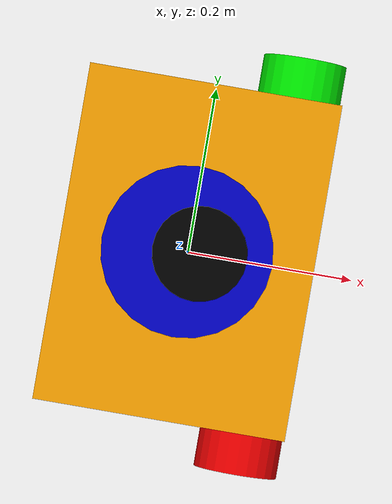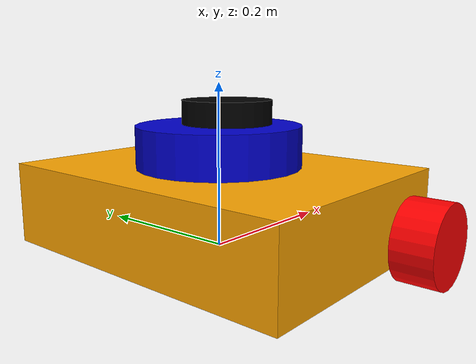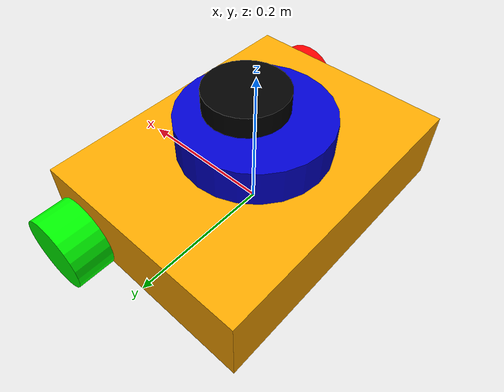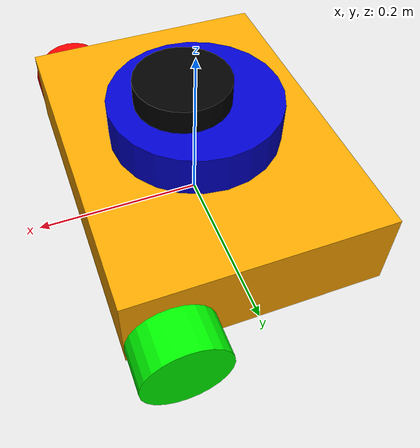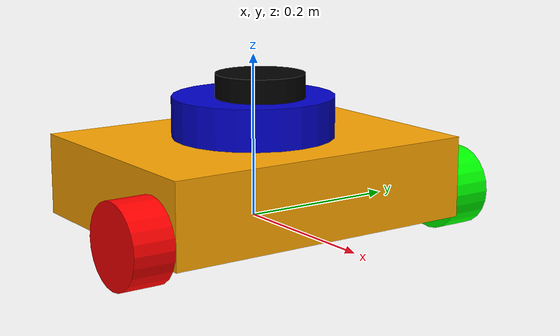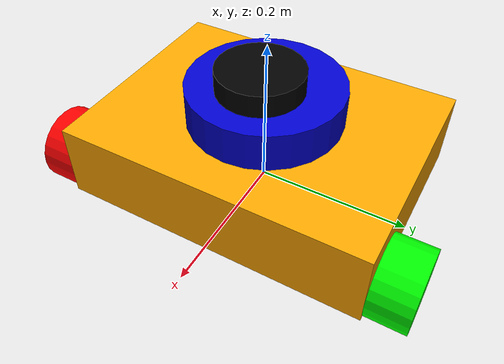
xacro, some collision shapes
<?xml version="1.0" ?>
<robot name="myrobot"  xmlns:xacro="http://www.ros.org/wiki/xacro">

  <!-- Constants for robot dimensions -->
  <xacro:property name="PI" value="3.1415926535897931"/>
  <xacro:property name="base_link_l" value="0.4" />
  <xacro:property name="base_link_w" value="0.3" />
  <xacro:property name="base_link_h" value="0.1" />
  <xacro:property name="base_link_mass" value="2" />

  <xacro:property name="wheel_length" value="0.05" />
  <xacro:property name="wheel_radius" value="0.05" />
  <xacro:property name="wheel_mass" value="0.2" />

  <xacro:property name="caster_radius" value="0.025" />
  <xacro:property name="caster_mass" value="0.05" />

  <xacro:property name="laser_scanner_base_link_height" value="0.05" />
  <xacro:property name="laser_scanner_base_link_radius" value="0.1" />
  <xacro:property name="laser_scanner_base_link_mass"   value="0.5" />

  <!-- color definition-->
  <material name="blue">
    <color rgba="0 0 0.8 1"/>
  </material>
  <material name="black">
    <color rgba="0 0 0 1"/>
  </material>
  <material name="white">
    <color rgba="1 1 1 1"/>
  </material>
  <material name="orange">
    <color rgba="1 0.65 0 1"/>
  </material>
  <material name="red">
    <color rgba="1 0 0 1"/>
  </material>
  <material name="green">
    <color rgba="0 1 0 1"/>
  </material>
  <material name="gray">
    <color rgba="0.5 0.5 0.5 1"/>
  </material>

  <!-- Macros -->
  <xacro:macro name="cube_inertial" params="mass">
         <inertial>
                  <mass value="${mass}" />
                  <inertia ixx="0.01" ixy="0.0"   ixz="0.0"
                                      iyy="0.02"  iyz="0.0"
                                                  izz="0.041" />
         </inertial>
  </xacro:macro>

  <xacro:macro name="cylinder_inertial" params="mass">
    <inertial>
      <mass value="${mass}"/>
      <inertia ixx="0.0001" ixy="0.0"     ixz="0.0"
                            iyy="0.0001"  iyz="0.0"
                                          izz="0.0001"/>
    </inertial>
  </xacro:macro>

  <xacro:macro name="sphere_inertial" params="mass">
    <inertial>
      <mass value="${mass}"/>
      <inertia ixx="1.2e-05" ixy="0.0"     ixz="0.0"
                            iyy="1.2e-05"  iyz="0.0"
                                           izz="1.2e-05"/>
    </inertial>
  </xacro:macro>

<!--footprint dummy link -->
  <link name="base_footprint"/>

  <joint name="base_joint" type="fixed">
    <parent link="base_footprint"/>
    <child link="base_link" />
    <origin xyz="0 0 0.05" rpy="0 0 0"/>
  </joint>

<!--base link -->
  <link name="base_link">
    <visual>
      <geometry>
        <box size="${base_link_w} ${base_link_l} ${base_link_h}"/>
      </geometry>
      <material name="orange"/>
    </visual>

    <collision>
      <geometry>
        <box size="${base_link_w} ${base_link_l} ${base_link_h}"/>
      </geometry>
    </collision>

    <xacro:cube_inertial mass="${base_link_mass}"/>
  </link>

  <gazebo reference="base_link">
    <material>Gazebo/Orange</material>
  </gazebo>

  <!--right wheel -->
  <link name="right_wheel">
    <visual>
      <geometry>
        <cylinder length="${wheel_length}" radius="${wheel_radius}"/>
      </geometry>
      <material name="red"/>
      <origin rpy="1.57075 0 0" xyz="0 -0.025 0"/>
      <material name="red"/>
    </visual>

    <collision>
      <geometry>
        <cylinder length="${wheel_length}" radius="${wheel_radius}"/>
      </geometry>
      <origin rpy="1.57075 0 0" xyz="0 -0.025 0"/>
    </collision>

    <xacro:cylinder_inertial mass="${wheel_mass}"/>
  </link>

  <gazebo reference="right_wheel">
    <material>Gazebo/Red</material>
  </gazebo>

  <joint name="wheel_right_joint" type="continuous">
    <parent link="base_link"/>
    <child link="right_wheel"/>
    <origin xyz="0.1 -0.2 -0.025"/>
    <axis xyz="0 1 0"/>
  </joint>
  <!--left wheel -->
  <link name="left_wheel">
    <visual>
      <geometry>
        <cylinder length="${wheel_length}" radius="${wheel_radius}"/>
      </geometry>
      <material name="green"/>
      <origin rpy="1.57075 0 0" xyz="0 0.025 0"/>
    </visual>

    <collision>
      <geometry>
        <cylinder length="${wheel_length}" radius="${wheel_radius}"/>
      </geometry>
      <origin rpy="1.57075 0 0" xyz="0 0.025 0"/>
    </collision>

    <xacro:cylinder_inertial mass="${wheel_mass}"/>
  </link>

  <gazebo reference="left_wheel">
    <material>Gazebo/Green</material>
  </gazebo>

  <joint name="wheel_left_joint" type="continuous">
    <parent link="base_link"/>
    <child link="left_wheel"/>
    <origin xyz="0.1 0.2 -0.025"/>
    <axis xyz="0 1 0"/>
  </joint>
  <!--right caster-->
  <link name="right_caster">
    <visual>
      <geometry>
        <sphere radius="${caster_radius}"/>
      </geometry>
      <origin xyz="0 0 0"/>
      <material name="gray"/>
    </visual>

    <collision>
      <geometry>
        <sphere radius="${caster_radius}"/>
      </geometry>
      <origin xyz="0 0 0"/>
    </collision>

    <xacro:sphere_inertial mass="${caster_mass}"/>
  </link>

  <gazebo reference="right_caster">
    <material>Gazebo/Gray</material>
  </gazebo>

  <joint name="base_to_right_caster" type="fixed">
    <parent link="base_link"/>
    <child link="right_caster"/>
    <origin xyz="-${base_link_w*0.33} ${base_link_l*0.25} -${base_link_h*0.5}"/>
  </joint>
  <!--left caster-->
  <link name="left_caster">
    <visual>
      <geometry>
        <sphere radius="${caster_radius}"/>
      </geometry>
      <origin xyz="0 0 0"/>
      <material name="gray"/>
    </visual>

    <collision>
      <geometry>
        <sphere radius="${caster_radius}"/>
      </geometry>
      <origin xyz="0 0 0"/>
    </collision>

    <xacro:sphere_inertial mass="${caster_mass}"/>
  </link>

  <gazebo reference="left_caster">
    <material>Gazebo/Gray</material>
  </gazebo>

  <joint name="base_to_left_caster" type="fixed">
    <parent link="base_link"/>
    <child link="left_caster"/>
    <origin xyz="-${base_link_w*0.33} -${base_link_l*0.25} -${base_link_h*0.5}"/>
  </joint>
<!-- imu -->
  <joint name="imu_joint" type="fixed">
    <parent link="base_link"/>
    <child link="imu_link"/>
    <origin xyz="0.0 0 0" rpy="0 0 0"/>
  </joint>

  <link name="imu_link"/>
<!-- laser scanner base link -->
  <link name="laser_scanner_base_link">
    <visual>
      <geometry>
        <cylinder length="${laser_scanner_base_link_height}" radius="${laser_scanner_base_link_radius}"/>
      </geometry>
      <origin xyz="0 0 ${laser_scanner_base_link_height*0.5}"/>
      <material name="blue"/>
    </visual>

    <collision>
      <geometry>
        <cylinder length="${laser_scanner_base_link_height}" radius="${laser_scanner_base_link_radius}"/>
      </geometry>
      <origin xyz="0 0 ${laser_scanner_base_link_height*0.5}"/>
    </collision>

    <xacro:cylinder_inertial mass="${laser_scanner_base_link_mass}"/>
  </link>

  <joint name="base_link_to_laser_scanner_base_link" type="fixed">
    <parent link="base_link"/>
    <child link="laser_scanner_base_link" />
    <origin xyz="0 0 ${base_link_h*0.5}"/>
  </joint>

  <gazebo reference="laser_scanner_base_link">
    <material>Gazebo/Blue</material>
  </gazebo>
  <!-- laser scanner -->
  <link name="base_scan">
    <visual>
      <origin xyz="0 0 0" rpy="0 0 0"/>
      <geometry>
        <mesh filename="package://turtlebot3_description/meshes/sensors/lds.stl" scale="0.001 0.001 0.001"/>
      </geometry>
      <material name="black"/>
    </visual>

    <collision>
      <origin xyz="0.015 0 -0.0065" rpy="0 0 0"/>
      <geometry>
        <cylinder length="0.0315" radius="0.055"/>
      </geometry>
    </collision>

    <inertial>
      <mass value="0.114" />
      <origin xyz="0 0 0" />
      <inertia ixx="0.001" ixy="0.0"   ixz="0.0"
                           iyy="0.001" iyz="0.0"
                                       izz="0.001" />
    </inertial>
  </link>

  <joint name="scan_joint" type="fixed">
    <parent link="laser_scanner_base_link"/>
    <child link="base_scan"/>
    <origin xyz="0 0 0.07" rpy="0 0 0"/>
  </joint>

  <gazebo reference="base_scan">
    <material>Gazebo/Black</material>
  </gazebo>
  <gazebo reference="left wheel">
    <mu1>0.1000</mu1>
    <mu2>0.1000</mu2>
    <kp>500000.0</kp>
    <kd>10.0</kd>
    <minDepth>0.001</minDepth>
    <maxVel>0.1</maxVel>
    <fdirl>1 0 0</fdirl>
  </gazebo>

  <gazebo reference="right_wheel">
    <mu1>0.1000</mu1>
    <mu2>0.1000</mu2>
    <kp>500000.0</kp>
    <kd>10.0</kd>
    <minDepth>0.001</minDepth>
    <maxVel>0.1</maxVel>
    <fdir1>1 0 0</fdir1>
  </gazebo>

  <gazebo reference="left_caster">
    <mu1>0.0</mu1>
    <mu2>0.0</mu2>
    <kp>1000000.0</kp>
    <kd>100.0</kd>
    <minDepth>0.001</minDepth>
    <maxVel>1.0</maxVel>
    <material>Gazebo/FlatBlack</material>
  </gazebo>

  <gazebo reference="right_caster">
    <mu1>0.0</mu1>
    <mu2>0.0</mu2>
    <kp>1000000.0</kp>
    <kd>100.0</kd>
    <minDepth>0.001</minDepth>
    <maxVel>1.0</maxVel>
    <material>Gazebo/FlatBlack</material>
  </gazebo>

  <gazebo>
    <plugin name="imu_plugin" filename="libgazebo_ros_imu.so">
      <alwaysOn>true</alwaysOn>
      <bodyName>imu_link</bodyName>
      <frameName>imu_link</frameName>
      <topicName>imu</topicName>
      <serviceName>imu_service</serviceName>
      <gaussianNoise>0.0</gaussianNoise>
      <updateRate>0</updateRate>
      <imu>
        <noise>
          <type>gaussian</type>
          <rate>
            <mean>0.0</mean>
            <stddev>2e-4</stddev>
            <bias_mean>0.0000075</bias_mean>
            <bias_stddev>0.0000008</bias_stddev>
          </rate>
          <accel>
            <mean>0.0</mean>
            <stddev>1.7e-2</stddev>
            <bias_mean>0.1</bias_mean>
            <bias_stddev>0.001</bias_stddev>
          </accel>
        </noise>
      </imu>
    </plugin>
  </gazebo>

  <xacro:arg name="laser_visual" default="true"/>
  <gazebo reference="base_scan">
    <material>Gazebo/FlatBlack</material>
    <sensor type="ray" name="lds_lfcd_sensor">
      <pose>0 0 0 0 0 0</pose>
      <visualize>$(arg laser_visual)</visualize>
      <update_rate>5</update_rate>
      <ray>
        <scan>
          <horizontal>
            <samples>360</samples>
            <resolution>1</resolution>
            <min_angle>0.0</min_angle>
            <max_angle>6.28319</max_angle>
          </horizontal>
        </scan>
        <range>
          <min>0.120</min>
          <max>3.5</max>
          <resolution>0.015</resolution>
        </range>
        <noise>
          <type>gaussian</type>
          <mean>0.0</mean>
          <stddev>0.01</stddev>
        </noise>
      </ray>
      <plugin name="gazebo_ros_lds_lfcd_controller" filename="libgazebo_ros_laser.so">
        <topicName>scan</topicName>
        <frameName>base_scan</frameName>
      </plugin>
    </sensor>
  </gazebo>

  <gazebo>
    <plugin name="turtlebot3_waffle_controller" filename="libgazebo_ros_diff_drive.so">
      <commandTopic>cmd_vel</commandTopic>
      <odometryTopic>odom</odometryTopic>
      <odometryFrame>odom</odometryFrame>
      <odometrySource>world</odometrySource>
      <publishOdomTF>true</publishOdomTF>
      <robotBaseFrame>base_footprint</robotBaseFrame>
      <publishWheelTF>false</publishWheelTF>
      <publishTf>true</publishTf>
      <publishWheelJointState>true</publishWheelJointState>
      <legacyMode>false</legacyMode>
      <updateRate>30</updateRate>
      <leftJoint>wheel_left_joint</leftJoint>
      <rightJoint>wheel_right_joint</rightJoint>
      <wheelSeparation>0.45</wheelSeparation>
      <wheelDiameter>0.1</wheelDiameter>
      <wheelAcceleration>1</wheelAcceleration>
      <wheelTorque>10</wheelTorque>
      <rosDebugLevel>na</rosDebugLevel>
    </plugin>
  </gazebo>
</robot>
